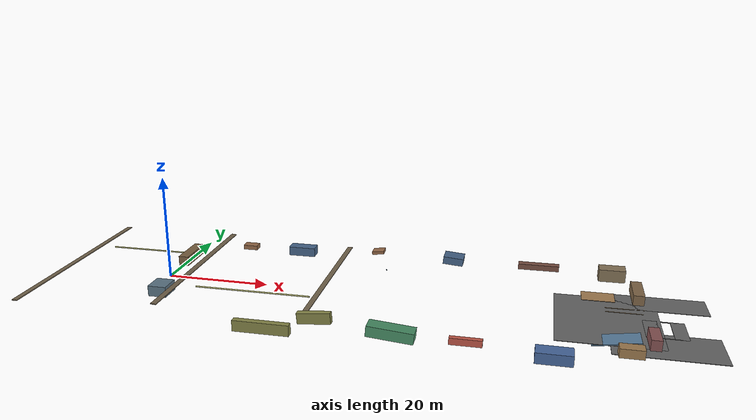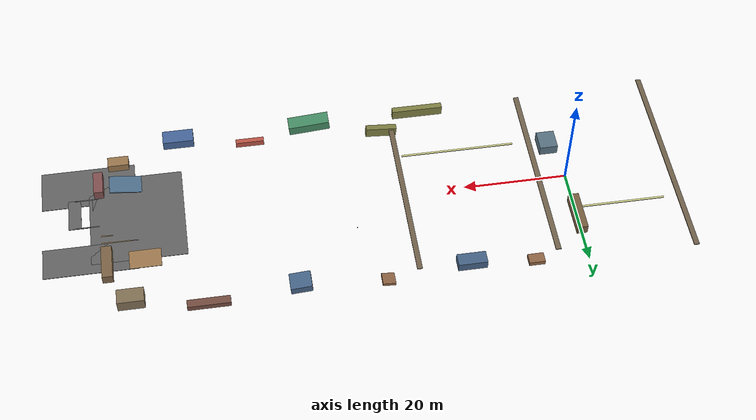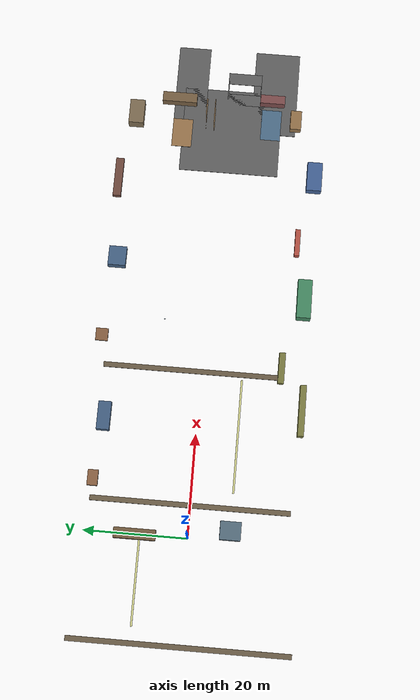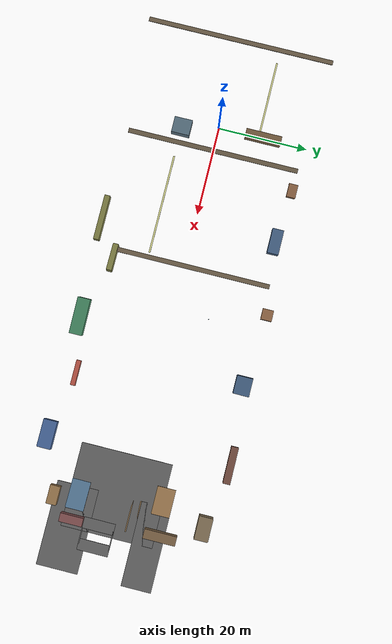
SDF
<sdf version="1.6">
 <world name="shipyard_indoor_100x50">
  <model name="ceiling_beams_and_lights">
   <static>true</static>
   <link name="overhead_features">
    <collision name="beam_west_collision">
     <pose>-20 0 1.87 0 0 0</pose>
     <geometry><box><size>1.0 42 0.16</size></box></geometry>
    </collision>
    <visual name="beam_west_visual">
     <pose>-20 0 1.87 0 0 0</pose>
     <geometry><box><size>1.0 42 0.16</size></box></geometry>
     <material><ambient>0.25 0.22 0.18 1</ambient><diffuse>0.45 0.39 0.30 1</diffuse></material>
    </visual>
    <collision name="beam_center_collision">
     <pose>6 0 2.8 0 0.0872664625997165 0</pose>
     <geometry><box><size>1.0 38 0.16</size></box></geometry>
    </collision>
    <visual name="beam_center_visual">
     <pose>6 0 2.8 0 0.0872664625997165 0</pose>
     <geometry><box><size>1.0 38 0.16</size></box></geometry>
     <material><ambient>0.25 0.22 0.18 1</ambient><diffuse>0.45 0.39 0.30 1</diffuse></material>
    </visual>
    <collision name="beam_east_collision">
     <pose>32 2 1.87 0 0 0</pose>
     <geometry><box><size>1.0 34 0.16</size></box></geometry>
    </collision>
    <visual name="beam_east_visual">
     <pose>32 2 1.87 0 0 0</pose>
     <geometry><box><size>1.0 34 0.16</size></box></geometry>
     <material><ambient>0.25 0.22 0.18 1</ambient><diffuse>0.45 0.39 0.30 1</diffuse></material>
    </visual>
    <visual name="light_strip_north">
     <pose>-8 9 1.66 0 0 0</pose>
     <geometry><box><size>18 0.35 0.15</size></box></geometry>
     <material><ambient>0.7 0.7 0.5 1</ambient><diffuse>0.9 0.9 0.6 1</diffuse></material>
    </visual>
    <visual name="light_strip_south">
     <pose>20 -8 1.92040272064102 0 0 0</pose>
     <geometry><box><size>22 0.35 0.15</size></box></geometry>
     <material><ambient>0.7 0.7 0.5 1</ambient><diffuse>0.9 0.9 0.6 1</diffuse></material>
    </visual>
   </link>
  </model>
  <model name="north_material_zone">
   <static>true</static>
   <link name="materials">
    <collision name="pallet_stack_a_collision">
     <pose>10 19 0.45 0 0 0</pose>
     <geometry><box><size>3.0 2.0 0.9</size></box></geometry>
    </collision>
    <visual name="pallet_stack_a_visual">
     <pose>10 19 0.45 0 0 0</pose>
     <geometry><box><size>3.0 2.0 0.9</size></box></geometry>
     <material><ambient>0.35 0.24 0.16 1</ambient><diffuse>0.58 0.41 0.28 1</diffuse></material>
    </visual>
    <collision name="steel_block_a_collision">
     <pose>22 18 0.9 0 0 0</pose>
     <geometry><box><size>5.5 2.5 1.8</size></box></geometry>
    </collision>
    <visual name="steel_block_a_visual">
     <pose>22 18 0.9 0 0 0</pose>
     <geometry><box><size>5.5 2.5 1.8</size></box></geometry>
     <material><ambient>0.18 0.25 0.35 1</ambient><diffuse>0.28 0.40 0.54 1</diffuse></material>
    </visual>
    <collision name="pallet_stack_b_collision">
     <pose>38 20 1.19995124101477 0 -0.0872664625997165 0</pose>
     <geometry><box><size>2.4 2.4 0.6</size></box></geometry>
    </collision>
    <visual name="pallet_stack_b_visual">
     <pose>38 20 1.19995124101477 0 -0.0872664625997165 0</pose>
     <geometry><box><size>2.4 2.4 0.6</size></box></geometry>
     <material><ambient>0.35 0.24 0.16 1</ambient><diffuse>0.58 0.41 0.28 1</diffuse></material>
    </visual>
    <collision name="steel_block_b_collision">
     <pose>54 18.5 1.39996517215437 0 0.0872664625997165 0</pose>
     <geometry><box><size>4.0 3.5 1.5</size></box></geometry>
    </collision>
    <visual name="steel_block_b_visual">
     <pose>54 18.5 1.39996517215437 0 0.0872664625997165 0</pose>
     <geometry><box><size>4.0 3.5 1.5</size></box></geometry>
     <material><ambient>0.18 0.25 0.35 1</ambient><diffuse>0.28 0.40 0.54 1</diffuse></material>
    </visual>
    <collision name="pipe_bundle_collision">
     <pose>71 20 0.55 0 0 0</pose>
     <geometry><box><size>8.0 1.6 1.1</size></box></geometry>
    </collision>
    <visual name="pipe_bundle_visual">
     <pose>71 20 0.55 0 0 0</pose>
     <geometry><box><size>8.0 1.6 1.1</size></box></geometry>
     <material><ambient>0.24 0.18 0.16 1</ambient><diffuse>0.47 0.31 0.26 1</diffuse></material>
    </visual>
    <collision name="crate_wall_collision">
     <pose>85 17.5 1.2 0 0 0</pose>
     <geometry><box><size>5.0 3.0 2.4</size></box></geometry>
    </collision>
    <visual name="crate_wall_visual">
     <pose>85 17.5 1.2 0 0 0</pose>
     <geometry><box><size>5.0 3.0 2.4</size></box></geometry>
     <material><ambient>0.30 0.26 0.20 1</ambient><diffuse>0.52 0.45 0.34 1</diffuse></material>
    </visual>
   </link>
  </model>
  <model name="south_temporary_zone">
   <static>true</static>
   <link name="temporary_structures">
    <collision name="scaffold_lane_1_collision">
     <pose>26 -20 1.0 0 0 0</pose>
     <geometry><box><size>10 1.2 2.0</size></box></geometry>
    </collision>
    <visual name="scaffold_lane_1_visual">
     <pose>26 -20 1.0 0 0 0</pose>
     <geometry><box><size>10 1.2 2.0</size></box></geometry>
     <material><ambient>0.25 0.25 0.16 1</ambient><diffuse>0.52 0.52 0.28 1</diffuse></material>
    </visual>
    <collision name="scaffold_lane_2_collision">
     <pose>34 -15.5 1.53336816155618 0 -0.0872664625997165 0</pose>
     <geometry><box><size>6 1.2 2.0</size></box></geometry>
    </collision>
    <visual name="scaffold_lane_2_visual">
     <pose>34 -15.5 1.53336816155618 0 -0.0872664625997165 0</pose>
     <geometry><box><size>6 1.2 2.0</size></box></geometry>
     <material><ambient>0.25 0.25 0.16 1</ambient><diffuse>0.52 0.52 0.28 1</diffuse></material>
    </visual>
    <collision name="container_a_collision">
     <pose>48 -19 1.99991641316914 0 0.0872664625997165 0</pose>
     <geometry><box><size>8 2.8 1.9</size></box></geometry>
    </collision>
    <visual name="container_a_visual">
     <pose>48 -19 1.99991641316914 0 0.0872664625997165 0</pose>
     <geometry><box><size>8 2.8 1.9</size></box></geometry>
     <material><ambient>0.18 0.33 0.24 1</ambient><diffuse>0.28 0.56 0.40 1</diffuse></material>
    </visual>
    <collision name="barrier_cluster_collision">
     <pose>60 -17 0.6 0 0 0</pose>
     <geometry><box><size>5.5 1.0 1.2</size></box></geometry>
    </collision>
    <visual name="barrier_cluster_visual">
     <pose>60 -17 0.6 0 0 0</pose>
     <geometry><box><size>5.5 1.0 1.2</size></box></geometry>
     <material><ambient>0.45 0.20 0.18 1</ambient><diffuse>0.75 0.34 0.28 1</diffuse></material>
    </visual>
    <collision name="container_b_collision">
     <pose>74 -19.5 0.95 0 0 0</pose>
     <geometry><box><size>6 3.0 1.9</size></box></geometry>
    </collision>
    <visual name="container_b_visual">
     <pose>74 -19.5 0.95 0 0 0</pose>
     <geometry><box><size>6 3.0 1.9</size></box></geometry>
     <material><ambient>0.18 0.24 0.36 1</ambient><diffuse>0.28 0.41 0.62 1</diffuse></material>
    </visual>
    <collision name="panel_stack_collision">
     <pose>86 -15 0.8 0 0 0</pose>
     <geometry><box><size>4 2.2 1.6</size></box></geometry>
    </collision>
    <visual name="panel_stack_visual">
     <pose>86 -15 0.8 0 0 0</pose>
     <geometry><box><size>4 2.2 1.6</size></box></geometry>
     <material><ambient>0.36 0.28 0.18 1</ambient><diffuse>0.62 0.48 0.31 1</diffuse></material>
    </visual>
   </link>
  </model>
  <model name="wall_side_features">
   <static>true</static>
   <link name="side_features">
    <collision name="west_rack_collision">
     <pose>0 10 0.95 0 0 0</pose>
     <geometry><box><size>2.0 8.0 1.9</size></box></geometry>
    </collision>
    <visual name="west_rack_visual">
     <pose>0 10 0.95 0 0 0</pose>
     <geometry><box><size>2.0 8.0 1.9</size></box></geometry>
     <material><ambient>0.26 0.20 0.14 1</ambient><diffuse>0.48 0.38 0.26 1</diffuse></material>
    </visual>
    <collision name="west_machine_collision">
     <pose>2 -8 1.0 0 0 0</pose>
     <geometry><box><size>3.5 4.0 2.0</size></box></geometry>
    </collision>
    <visual name="west_machine_visual">
     <pose>2 -8 1.0 0 0 0</pose>
     <geometry><box><size>3.5 4.0 2.0</size></box></geometry>
     <material><ambient>0.22 0.28 0.32 1</ambient><diffuse>0.36 0.46 0.52 1</diffuse></material>
    </visual>
    <collision name="east_rack_collision">
     <pose>89 9 0.95 0 0 0</pose>
     <geometry><box><size>2.0 7.0 1.9</size></box></geometry>
    </collision>
    <visual name="east_rack_visual">
     <pose>89 9 0.95 0 0 0</pose>
     <geometry><box><size>2.0 7.0 1.9</size></box></geometry>
     <material><ambient>0.28 0.22 0.16 1</ambient><diffuse>0.50 0.40 0.28 1</diffuse></material>
    </visual>
    <collision name="east_cabinet_collision">
     <pose>90 -10 0.95 0 0 0</pose>
     <geometry><box><size>1.8 5.0 1.9</size></box></geometry>
    </collision>
    <visual name="east_cabinet_visual">
     <pose>90 -10 0.95 0 0 0</pose>
     <geometry><box><size>1.8 5.0 1.9</size></box></geometry>
     <material><ambient>0.26 0.18 0.18 1</ambient><diffuse>0.52 0.32 0.32 1</diffuse></material>
    </visual>
   </link>
  </model>
  <model name="east_evaluation_zone">
   <static>true</static>
   <link name="evaluation_features">
    <collision name="eval_floor_left_collision">
     <pose>83 -2 -0.05 0 0 0</pose>
     <geometry><box><size>18 20 0.1</size></box></geometry>
    </collision>
    <visual name="eval_floor_left_visual">
     <pose>83 -2 -0.05 0 0 0</pose>
     <geometry><box><size>18 20 0.1</size></box></geometry>
     <material><ambient>0.24 0.24 0.24 1</ambient><diffuse>0.40 0.40 0.40 1</diffuse></material>
    </visual>
    <collision name="eval_floor_upper_collision">
     <pose>92 6.75 -0.05 0 0 0</pose>
     <geometry><box><size>18 6.5 0.1</size></box></geometry>
    </collision>
    <visual name="eval_floor_upper_visual">
     <pose>92 6.75 -0.05 0 0 0</pose>
     <geometry><box><size>18 6.5 0.1</size></box></geometry>
     <material><ambient>0.24 0.24 0.24 1</ambient><diffuse>0.40 0.40 0.40 1</diffuse></material>
    </visual>
    <collision name="eval_floor_lower_collision">
     <pose>92 -10.5 -0.05 0 0 0</pose>
     <geometry><box><size>18 9.0 0.1</size></box></geometry>
    </collision>
    <visual name="eval_floor_lower_visual">
     <pose>92 -10.5 -0.05 0 0 0</pose>
     <geometry><box><size>18 9.0 0.1</size></box></geometry>
     <material><ambient>0.24 0.24 0.24 1</ambient><diffuse>0.40 0.40 0.40 1</diffuse></material>
    </visual>
    <collision name="step_platform_collision">
     <pose>82 8 0.04 0 0 0</pose>
     <geometry><box><size>6 4 0.08</size></box></geometry>
    </collision>
    <visual name="step_platform_visual">
     <pose>82 8 0.04 0 0 0</pose>
     <geometry><box><size>6 4 0.08</size></box></geometry>
     <material><ambient>0.42 0.32 0.20 1</ambient><diffuse>0.64 0.49 0.32 1</diffuse></material>
    </visual>
    <collision name="groove_lower_shoulder_collision">
     <pose>86.5 1.65 -0.05 0 0 0</pose>
     <geometry><box><size>7.0 0.25 0.1</size></box></geometry>
    </collision>
    <visual name="groove_lower_shoulder_visual">
     <pose>86.5 1.65 -0.05 0 0 0</pose>
     <geometry><box><size>7.0 0.25 0.1</size></box></geometry>
     <material><ambient>0.32 0.26 0.18 1</ambient><diffuse>0.55 0.44 0.30 1</diffuse></material>
    </visual>
    <collision name="groove_upper_shoulder_collision">
     <pose>86.5 3.35 -0.05 0 0 0</pose>
     <geometry><box><size>7.0 0.25 0.1</size></box></geometry>
    </collision>
    <visual name="groove_upper_shoulder_visual">
     <pose>86.5 3.35 -0.05 0 0 0</pose>
     <geometry><box><size>7.0 0.25 0.1</size></box></geometry>
     <material><ambient>0.32 0.26 0.18 1</ambient><diffuse>0.55 0.44 0.30 1</diffuse></material>
    </visual>
    <collision name="hole_left_collision">
     <pose>90.2 -4.1 -0.05 0 0 0</pose>
     <geometry><box><size>2.4 6.8 0.1</size></box></geometry>
    </collision>
    <visual name="hole_left_visual">
     <pose>90.2 -4.1 -0.05 0 0 0</pose>
     <geometry><box><size>2.4 6.8 0.1</size></box></geometry>
     <material><ambient>0.24 0.24 0.24 1</ambient><diffuse>0.40 0.40 0.40 1</diffuse></material>
    </visual>
    <collision name="hole_right_collision">
     <pose>94.8 -4.1 -0.05 0 0 0</pose>
     <geometry><box><size>2.4 6.8 0.1</size></box></geometry>
    </collision>
    <visual name="hole_right_visual">
     <pose>94.8 -4.1 -0.05 0 0 0</pose>
     <geometry><box><size>2.4 6.8 0.1</size></box></geometry>
     <material><ambient>0.24 0.24 0.24 1</ambient><diffuse>0.40 0.40 0.40 1</diffuse></material>
    </visual>
    <collision name="hole_top_collision">
     <pose>92.5 -0.8 -0.05 0 0 0</pose>
     <geometry><box><size>4.6 0.2 0.1</size></box></geometry>
    </collision>
    <visual name="hole_top_visual">
     <pose>92.5 -0.8 -0.05 0 0 0</pose>
     <geometry><box><size>4.6 0.2 0.1</size></box></geometry>
     <material><ambient>0.24 0.24 0.24 1</ambient><diffuse>0.40 0.40 0.40 1</diffuse></material>
    </visual>
    <collision name="hole_bottom_collision">
     <pose>92.5 -7.4 -0.05 0 0 0</pose>
     <geometry><box><size>4.6 0.2 0.1</size></box></geometry>
    </collision>
    <visual name="hole_bottom_visual">
     <pose>92.5 -7.4 -0.05 0 0 0</pose>
     <geometry><box><size>4.6 0.2 0.1</size></box></geometry>
     <material><ambient>0.24 0.24 0.24 1</ambient><diffuse>0.40 0.40 0.40 1</diffuse></material>
    </visual>
    <collision name="ramp_collision">
     <pose>84 -10 0.225 0 -0.149 0</pose>
     <geometry><box><size>8 4 0.2</size></box></geometry>
    </collision>
    <visual name="ramp_visual">
     <pose>84 -10 0.225 0 -0.149 0</pose>
     <geometry><box><size>8 4 0.2</size></box></geometry>
     <material><ambient>0.20 0.26 0.32 1</ambient><diffuse>0.34 0.48 0.60 1</diffuse></material>
    </visual>
   </link>
  </model>
  <model name="ceiling_pulley_outer_14">
   <static>true</static>
   <pose>-2 8 1.835 0 0 0</pose>
   <link name="disk_link">
    <pose>44 0 0 1.57079632679 0 1.57079632679</pose>
    <visual name="disk_visual">
     <geometry><cylinder><radius>0.15</radius><length>0.03</length></cylinder></geometry>
     <material><ambient>0.15 0.35 0.45 1</ambient><diffuse>0.15 0.35 0.45 1</diffuse></material>
    </visual>
    <collision name="disk_collision">
     <geometry><cylinder><radius>0.15</radius><length>0.03</length></cylinder></geometry>
    </collision>
   </link>
   <link name="brace_left_link">
    <pose>43.94 0 0.10 0 1.57079632679 0.72</pose>
    <visual name="brace_left_visual">
     <geometry><box><size>0.21 0.03 0.03</size></box></geometry>
     <material><ambient>0.15 0.35 0.45 1</ambient><diffuse>0.15 0.35 0.45 1</diffuse></material>
    </visual>
    <collision name="brace_left_collision"><geometry><box><size>0.21 0.03 0.03</size></box></geometry></collision>
   </link>
   <link name="brace_right_link">
    <pose>44.06 0 0.10 0 1.57079632679 -0.72</pose>
    <visual name="brace_right_visual">
     <geometry><box><size>0.21 0.03 0.03</size></box></geometry>
     <material><ambient>0.15 0.35 0.45 1</ambient><diffuse>0.15 0.35 0.45 1</diffuse></material>
    </visual>
    <collision name="brace_right_collision">
     <geometry><box><size>0.21 0.03 0.03</size></box></geometry>
    </collision>
   </link>
  </model>
 </world>
</sdf>
